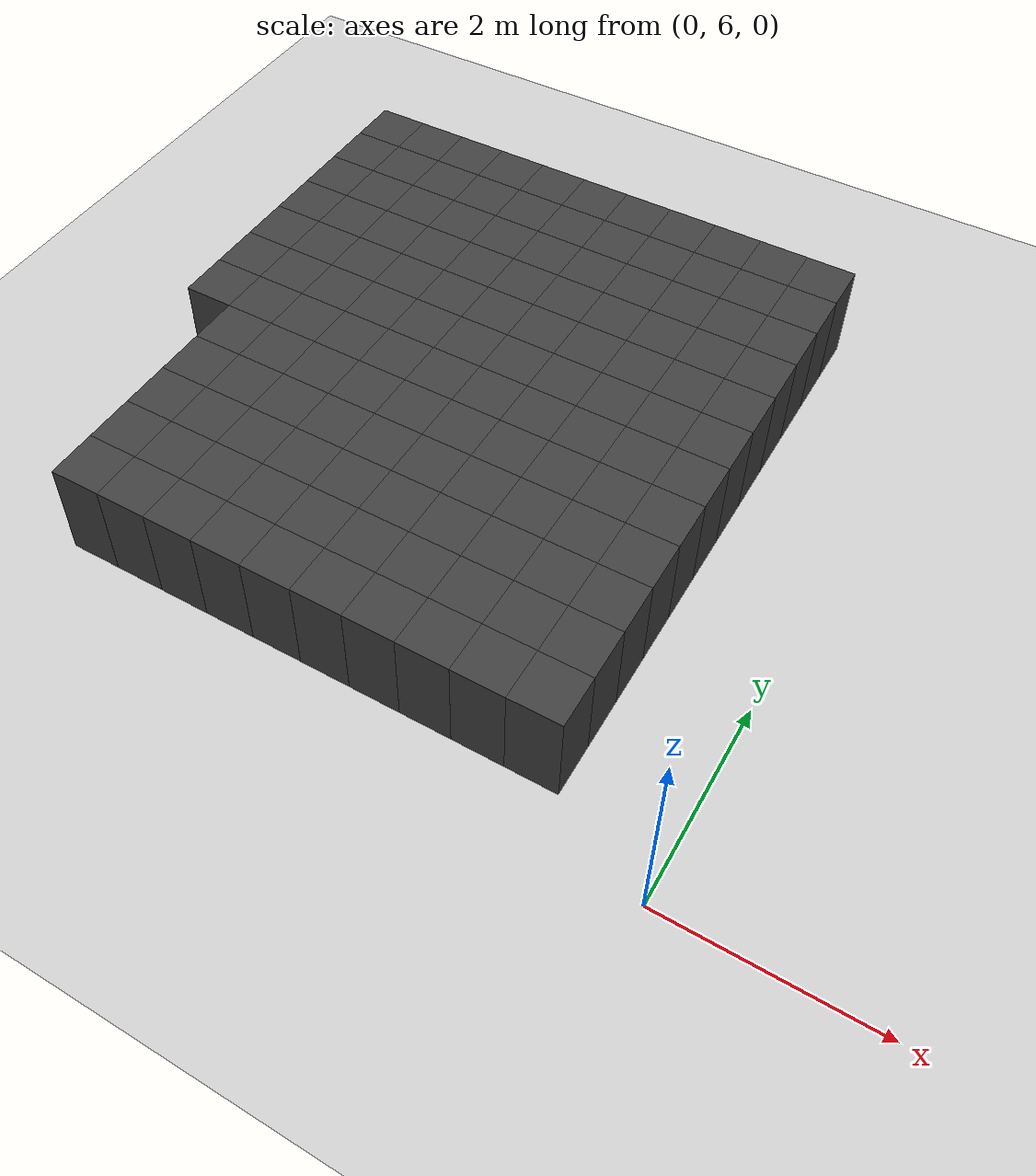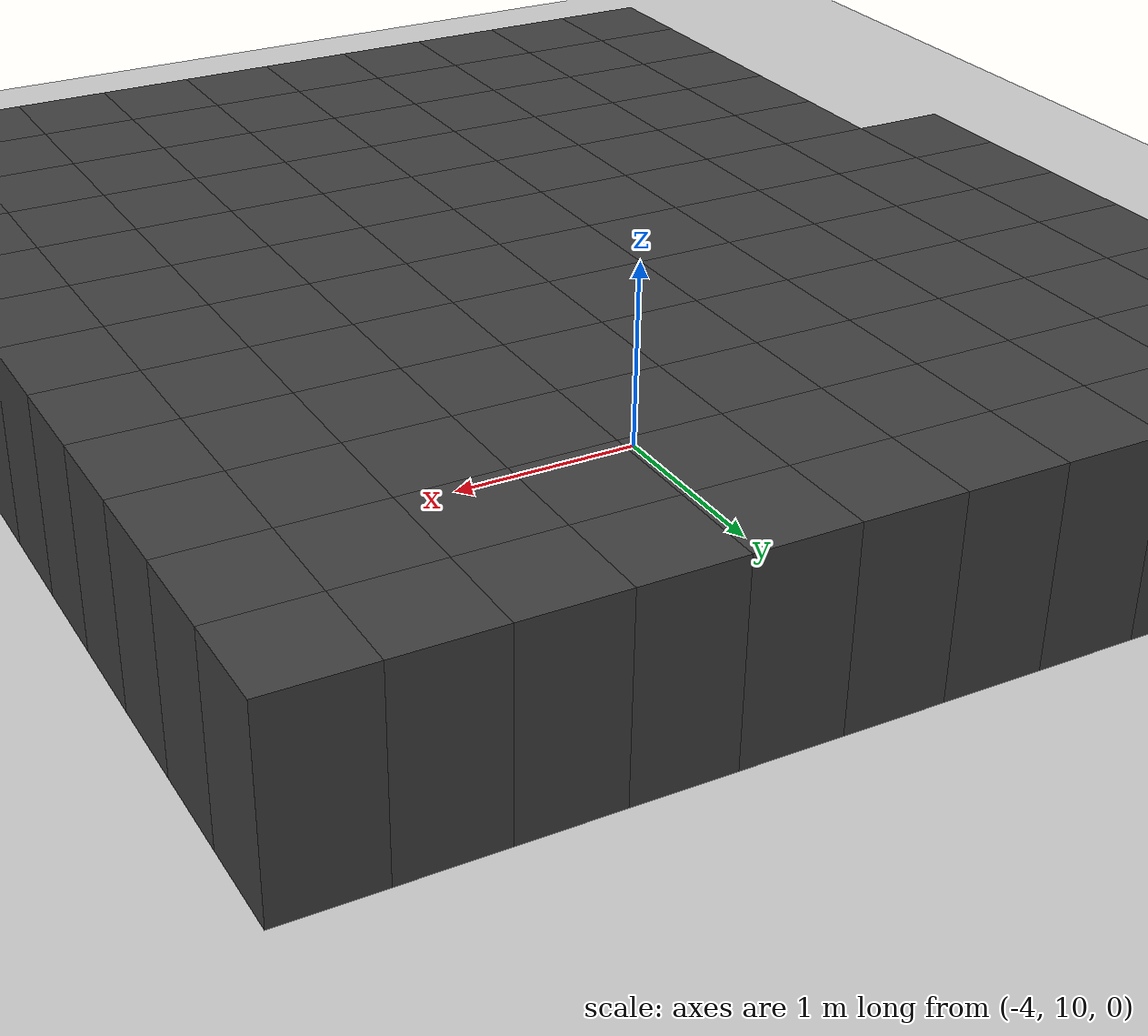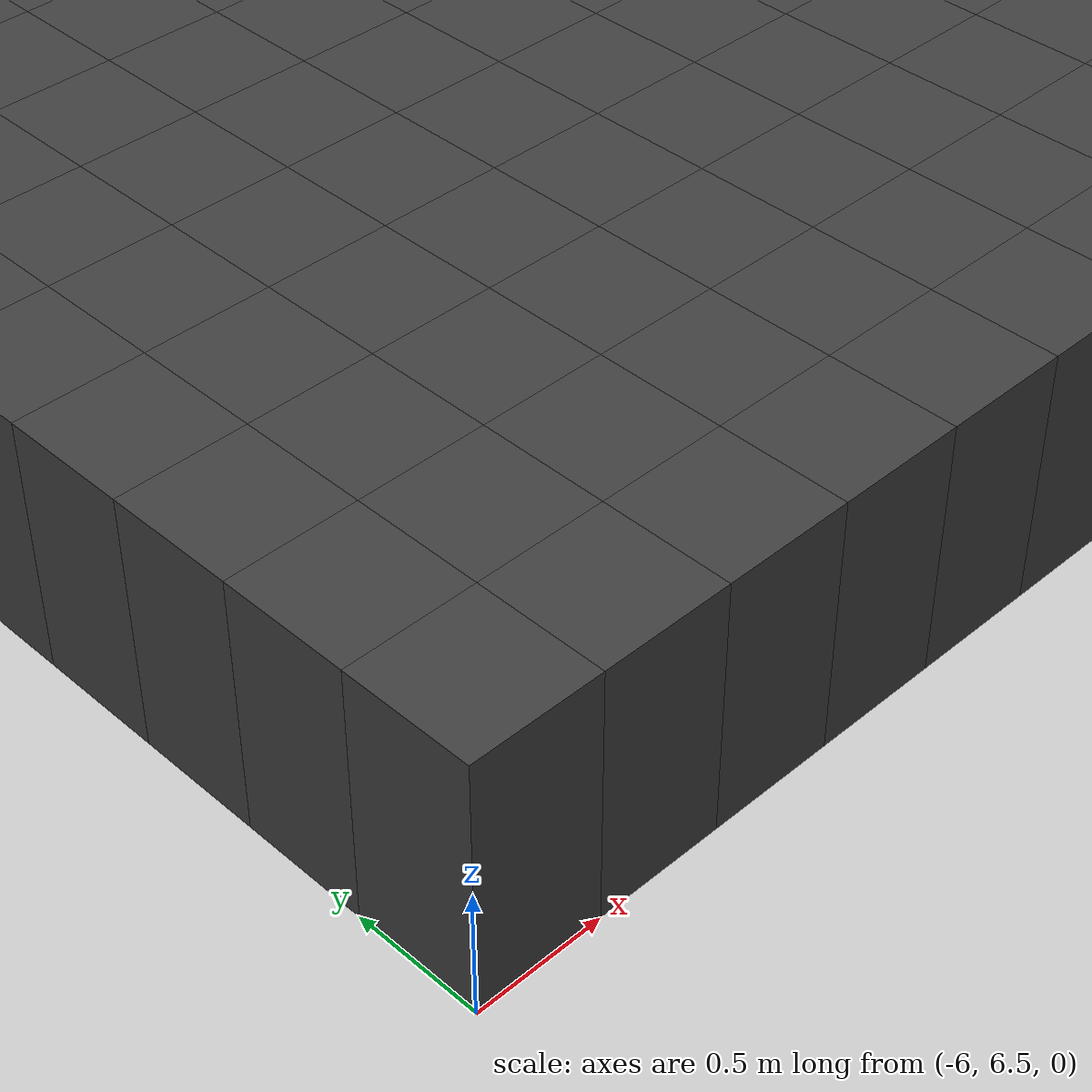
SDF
<sdf version="1.7">
 <world name="map_10777">
  <model name="ground_plane">
   <static>true</static>
   <link name="link">
    <collision name="collision">
     <geometry><plane><normal>0 0 1</normal><size>200 200</size></plane></geometry>
    </collision>
    <visual name="visual">
     <geometry><plane><normal>0 0 1</normal><size>200 200</size></plane></geometry>
     <material><ambient>0.8 0.8 0.8 1</ambient><diffuse>0.8 0.8 0.8 1</diffuse></material>
    </visual>
   </link>
  </model>
  <model name="maze_environment">
   <static>true</static>
   <link name="wall_12">
    <pose>-6.250 12.250 0.500 0 0 0</pose>
    <collision name="col"><geometry><box><size>0.5 0.5 1.0</size></box></geometry></collision>
    <visual name="vis">
     <geometry><box><size>0.5 0.5 1.0</size></box></geometry>
     <material><ambient>0.15 0.15 0.15 1</ambient><diffuse>0.25 0.25 0.25 1</diffuse></material>
    </visual>
   </link>
   <link name="wall_13">
    <pose>-5.750 12.250 0.500 0 0 0</pose>
    <collision name="col"><geometry><box><size>0.5 0.5 1.0</size></box></geometry></collision>
    <visual name="vis">
     <geometry><box><size>0.5 0.5 1.0</size></box></geometry>
     <material><ambient>0.15 0.15 0.15 1</ambient><diffuse>0.25 0.25 0.25 1</diffuse></material>
    </visual>
   </link>
   <link name="wall_14">
    <pose>-5.250 12.250 0.500 0 0 0</pose>
    <collision name="col"><geometry><box><size>0.5 0.5 1.0</size></box></geometry></collision>
    <visual name="vis">
     <geometry><box><size>0.5 0.5 1.0</size></box></geometry>
     <material><ambient>0.15 0.15 0.15 1</ambient><diffuse>0.25 0.25 0.25 1</diffuse></material>
    </visual>
   </link>
   <link name="wall_15">
    <pose>-4.750 12.250 0.500 0 0 0</pose>
    <collision name="col"><geometry><box><size>0.5 0.5 1.0</size></box></geometry></collision>
    <visual name="vis">
     <geometry><box><size>0.5 0.5 1.0</size></box></geometry>
     <material><ambient>0.15 0.15 0.15 1</ambient><diffuse>0.25 0.25 0.25 1</diffuse></material>
    </visual>
   </link>
   <link name="wall_16">
    <pose>-4.250 12.250 0.500 0 0 0</pose>
    <collision name="col"><geometry><box><size>0.5 0.5 1.0</size></box></geometry></collision>
    <visual name="vis">
     <geometry><box><size>0.5 0.5 1.0</size></box></geometry>
     <material><ambient>0.15 0.15 0.15 1</ambient><diffuse>0.25 0.25 0.25 1</diffuse></material>
    </visual>
   </link>
   <link name="wall_17">
    <pose>-3.750 12.250 0.500 0 0 0</pose>
    <collision name="col"><geometry><box><size>0.5 0.5 1.0</size></box></geometry></collision>
    <visual name="vis">
     <geometry><box><size>0.5 0.5 1.0</size></box></geometry>
     <material><ambient>0.15 0.15 0.15 1</ambient><diffuse>0.25 0.25 0.25 1</diffuse></material>
    </visual>
   </link>
   <link name="wall_18">
    <pose>-3.250 12.250 0.500 0 0 0</pose>
    <collision name="col"><geometry><box><size>0.5 0.5 1.0</size></box></geometry></collision>
    <visual name="vis">
     <geometry><box><size>0.5 0.5 1.0</size></box></geometry>
     <material><ambient>0.15 0.15 0.15 1</ambient><diffuse>0.25 0.25 0.25 1</diffuse></material>
    </visual>
   </link>
   <link name="wall_19">
    <pose>-2.750 12.250 0.500 0 0 0</pose>
    <collision name="col"><geometry><box><size>0.5 0.5 1.0</size></box></geometry></collision>
    <visual name="vis">
     <geometry><box><size>0.5 0.5 1.0</size></box></geometry>
     <material><ambient>0.15 0.15 0.15 1</ambient><diffuse>0.25 0.25 0.25 1</diffuse></material>
    </visual>
   </link>
   <link name="wall_20">
    <pose>-2.250 12.250 0.500 0 0 0</pose>
    <collision name="col"><geometry><box><size>0.5 0.5 1.0</size></box></geometry></collision>
    <visual name="vis">
     <geometry><box><size>0.5 0.5 1.0</size></box></geometry>
     <material><ambient>0.15 0.15 0.15 1</ambient><diffuse>0.25 0.25 0.25 1</diffuse></material>
    </visual>
   </link>
   <link name="wall_21">
    <pose>-1.750 12.250 0.500 0 0 0</pose>
    <collision name="col"><geometry><box><size>0.5 0.5 1.0</size></box></geometry></collision>
    <visual name="vis">
     <geometry><box><size>0.5 0.5 1.0</size></box></geometry>
     <material><ambient>0.15 0.15 0.15 1</ambient><diffuse>0.25 0.25 0.25 1</diffuse></material>
    </visual>
   </link>
   <link name="wall_22">
    <pose>-1.250 12.250 0.500 0 0 0</pose>
    <collision name="col"><geometry><box><size>0.5 0.5 1.0</size></box></geometry></collision>
    <visual name="vis">
     <geometry><box><size>0.5 0.5 1.0</size></box></geometry>
     <material><ambient>0.15 0.15 0.15 1</ambient><diffuse>0.25 0.25 0.25 1</diffuse></material>
    </visual>
   </link>
   <link name="wall_59">
    <pose>-6.250 11.750 0.500 0 0 0</pose>
    <collision name="col"><geometry><box><size>0.5 0.5 1.0</size></box></geometry></collision>
    <visual name="vis">
     <geometry><box><size>0.5 0.5 1.0</size></box></geometry>
     <material><ambient>0.15 0.15 0.15 1</ambient><diffuse>0.25 0.25 0.25 1</diffuse></material>
    </visual>
   </link>
   <link name="wall_60">
    <pose>-5.750 11.750 0.500 0 0 0</pose>
    <collision name="col"><geometry><box><size>0.5 0.5 1.0</size></box></geometry></collision>
    <visual name="vis">
     <geometry><box><size>0.5 0.5 1.0</size></box></geometry>
     <material><ambient>0.15 0.15 0.15 1</ambient><diffuse>0.25 0.25 0.25 1</diffuse></material>
    </visual>
   </link>
   <link name="wall_61">
    <pose>-5.250 11.750 0.500 0 0 0</pose>
    <collision name="col"><geometry><box><size>0.5 0.5 1.0</size></box></geometry></collision>
    <visual name="vis">
     <geometry><box><size>0.5 0.5 1.0</size></box></geometry>
     <material><ambient>0.15 0.15 0.15 1</ambient><diffuse>0.25 0.25 0.25 1</diffuse></material>
    </visual>
   </link>
   <link name="wall_62">
    <pose>-4.750 11.750 0.500 0 0 0</pose>
    <collision name="col"><geometry><box><size>0.5 0.5 1.0</size></box></geometry></collision>
    <visual name="vis">
     <geometry><box><size>0.5 0.5 1.0</size></box></geometry>
     <material><ambient>0.15 0.15 0.15 1</ambient><diffuse>0.25 0.25 0.25 1</diffuse></material>
    </visual>
   </link>
   <link name="wall_63">
    <pose>-4.250 11.750 0.500 0 0 0</pose>
    <collision name="col"><geometry><box><size>0.5 0.5 1.0</size></box></geometry></collision>
    <visual name="vis">
     <geometry><box><size>0.5 0.5 1.0</size></box></geometry>
     <material><ambient>0.15 0.15 0.15 1</ambient><diffuse>0.25 0.25 0.25 1</diffuse></material>
    </visual>
   </link>
   <link name="wall_64">
    <pose>-3.750 11.750 0.500 0 0 0</pose>
    <collision name="col"><geometry><box><size>0.5 0.5 1.0</size></box></geometry></collision>
    <visual name="vis">
     <geometry><box><size>0.5 0.5 1.0</size></box></geometry>
     <material><ambient>0.15 0.15 0.15 1</ambient><diffuse>0.25 0.25 0.25 1</diffuse></material>
    </visual>
   </link>
   <link name="wall_65">
    <pose>-3.250 11.750 0.500 0 0 0</pose>
    <collision name="col"><geometry><box><size>0.5 0.5 1.0</size></box></geometry></collision>
    <visual name="vis">
     <geometry><box><size>0.5 0.5 1.0</size></box></geometry>
     <material><ambient>0.15 0.15 0.15 1</ambient><diffuse>0.25 0.25 0.25 1</diffuse></material>
    </visual>
   </link>
   <link name="wall_66">
    <pose>-2.750 11.750 0.500 0 0 0</pose>
    <collision name="col"><geometry><box><size>0.5 0.5 1.0</size></box></geometry></collision>
    <visual name="vis">
     <geometry><box><size>0.5 0.5 1.0</size></box></geometry>
     <material><ambient>0.15 0.15 0.15 1</ambient><diffuse>0.25 0.25 0.25 1</diffuse></material>
    </visual>
   </link>
   <link name="wall_67">
    <pose>-2.250 11.750 0.500 0 0 0</pose>
    <collision name="col"><geometry><box><size>0.5 0.5 1.0</size></box></geometry></collision>
    <visual name="vis">
     <geometry><box><size>0.5 0.5 1.0</size></box></geometry>
     <material><ambient>0.15 0.15 0.15 1</ambient><diffuse>0.25 0.25 0.25 1</diffuse></material>
    </visual>
   </link>
   <link name="wall_68">
    <pose>-1.750 11.750 0.500 0 0 0</pose>
    <collision name="col"><geometry><box><size>0.5 0.5 1.0</size></box></geometry></collision>
    <visual name="vis">
     <geometry><box><size>0.5 0.5 1.0</size></box></geometry>
     <material><ambient>0.15 0.15 0.15 1</ambient><diffuse>0.25 0.25 0.25 1</diffuse></material>
    </visual>
   </link>
   <link name="wall_69">
    <pose>-1.250 11.750 0.500 0 0 0</pose>
    <collision name="col"><geometry><box><size>0.5 0.5 1.0</size></box></geometry></collision>
    <visual name="vis">
     <geometry><box><size>0.5 0.5 1.0</size></box></geometry>
     <material><ambient>0.15 0.15 0.15 1</ambient><diffuse>0.25 0.25 0.25 1</diffuse></material>
    </visual>
   </link>
   <link name="wall_106">
    <pose>-6.250 11.250 0.500 0 0 0</pose>
    <collision name="col"><geometry><box><size>0.5 0.5 1.0</size></box></geometry></collision>
    <visual name="vis">
     <geometry><box><size>0.5 0.5 1.0</size></box></geometry>
     <material><ambient>0.15 0.15 0.15 1</ambient><diffuse>0.25 0.25 0.25 1</diffuse></material>
    </visual>
   </link>
   <link name="wall_107">
    <pose>-5.750 11.250 0.500 0 0 0</pose>
    <collision name="col"><geometry><box><size>0.5 0.5 1.0</size></box></geometry></collision>
    <visual name="vis">
     <geometry><box><size>0.5 0.5 1.0</size></box></geometry>
     <material><ambient>0.15 0.15 0.15 1</ambient><diffuse>0.25 0.25 0.25 1</diffuse></material>
    </visual>
   </link>
   <link name="wall_108">
    <pose>-5.250 11.250 0.500 0 0 0</pose>
    <collision name="col"><geometry><box><size>0.5 0.5 1.0</size></box></geometry></collision>
    <visual name="vis">
     <geometry><box><size>0.5 0.5 1.0</size></box></geometry>
     <material><ambient>0.15 0.15 0.15 1</ambient><diffuse>0.25 0.25 0.25 1</diffuse></material>
    </visual>
   </link>
   <link name="wall_109">
    <pose>-4.750 11.250 0.500 0 0 0</pose>
    <collision name="col"><geometry><box><size>0.5 0.5 1.0</size></box></geometry></collision>
    <visual name="vis">
     <geometry><box><size>0.5 0.5 1.0</size></box></geometry>
     <material><ambient>0.15 0.15 0.15 1</ambient><diffuse>0.25 0.25 0.25 1</diffuse></material>
    </visual>
   </link>
   <link name="wall_110">
    <pose>-4.250 11.250 0.500 0 0 0</pose>
    <collision name="col"><geometry><box><size>0.5 0.5 1.0</size></box></geometry></collision>
    <visual name="vis">
     <geometry><box><size>0.5 0.5 1.0</size></box></geometry>
     <material><ambient>0.15 0.15 0.15 1</ambient><diffuse>0.25 0.25 0.25 1</diffuse></material>
    </visual>
   </link>
   <link name="wall_111">
    <pose>-3.750 11.250 0.500 0 0 0</pose>
    <collision name="col"><geometry><box><size>0.5 0.5 1.0</size></box></geometry></collision>
    <visual name="vis">
     <geometry><box><size>0.5 0.5 1.0</size></box></geometry>
     <material><ambient>0.15 0.15 0.15 1</ambient><diffuse>0.25 0.25 0.25 1</diffuse></material>
    </visual>
   </link>
   <link name="wall_112">
    <pose>-3.250 11.250 0.500 0 0 0</pose>
    <collision name="col"><geometry><box><size>0.5 0.5 1.0</size></box></geometry></collision>
    <visual name="vis">
     <geometry><box><size>0.5 0.5 1.0</size></box></geometry>
     <material><ambient>0.15 0.15 0.15 1</ambient><diffuse>0.25 0.25 0.25 1</diffuse></material>
    </visual>
   </link>
   <link name="wall_113">
    <pose>-2.750 11.250 0.500 0 0 0</pose>
    <collision name="col"><geometry><box><size>0.5 0.5 1.0</size></box></geometry></collision>
    <visual name="vis">
     <geometry><box><size>0.5 0.5 1.0</size></box></geometry>
     <material><ambient>0.15 0.15 0.15 1</ambient><diffuse>0.25 0.25 0.25 1</diffuse></material>
    </visual>
   </link>
   <link name="wall_114">
    <pose>-2.250 11.250 0.500 0 0 0</pose>
    <collision name="col"><geometry><box><size>0.5 0.5 1.0</size></box></geometry></collision>
    <visual name="vis">
     <geometry><box><size>0.5 0.5 1.0</size></box></geometry>
     <material><ambient>0.15 0.15 0.15 1</ambient><diffuse>0.25 0.25 0.25 1</diffuse></material>
    </visual>
   </link>
   <link name="wall_115">
    <pose>-1.750 11.250 0.500 0 0 0</pose>
    <collision name="col"><geometry><box><size>0.5 0.5 1.0</size></box></geometry></collision>
    <visual name="vis">
     <geometry><box><size>0.5 0.5 1.0</size></box></geometry>
     <material><ambient>0.15 0.15 0.15 1</ambient><diffuse>0.25 0.25 0.25 1</diffuse></material>
    </visual>
   </link>
   <link name="wall_116">
    <pose>-1.250 11.250 0.500 0 0 0</pose>
    <collision name="col"><geometry><box><size>0.5 0.5 1.0</size></box></geometry></collision>
    <visual name="vis">
     <geometry><box><size>0.5 0.5 1.0</size></box></geometry>
     <material><ambient>0.15 0.15 0.15 1</ambient><diffuse>0.25 0.25 0.25 1</diffuse></material>
    </visual>
   </link>
   <link name="wall_153">
    <pose>-6.250 10.750 0.500 0 0 0</pose>
    <collision name="col"><geometry><box><size>0.5 0.5 1.0</size></box></geometry></collision>
    <visual name="vis">
     <geometry><box><size>0.5 0.5 1.0</size></box></geometry>
     <material><ambient>0.15 0.15 0.15 1</ambient><diffuse>0.25 0.25 0.25 1</diffuse></material>
    </visual>
   </link>
   <link name="wall_154">
    <pose>-5.750 10.750 0.500 0 0 0</pose>
    <collision name="col"><geometry><box><size>0.5 0.5 1.0</size></box></geometry></collision>
    <visual name="vis">
     <geometry><box><size>0.5 0.5 1.0</size></box></geometry>
     <material><ambient>0.15 0.15 0.15 1</ambient><diffuse>0.25 0.25 0.25 1</diffuse></material>
    </visual>
   </link>
   <link name="wall_155">
    <pose>-5.250 10.750 0.500 0 0 0</pose>
    <collision name="col"><geometry><box><size>0.5 0.5 1.0</size></box></geometry></collision>
    <visual name="vis">
     <geometry><box><size>0.5 0.5 1.0</size></box></geometry>
     <material><ambient>0.15 0.15 0.15 1</ambient><diffuse>0.25 0.25 0.25 1</diffuse></material>
    </visual>
   </link>
   <link name="wall_156">
    <pose>-4.750 10.750 0.500 0 0 0</pose>
    <collision name="col"><geometry><box><size>0.5 0.5 1.0</size></box></geometry></collision>
    <visual name="vis">
     <geometry><box><size>0.5 0.5 1.0</size></box></geometry>
     <material><ambient>0.15 0.15 0.15 1</ambient><diffuse>0.25 0.25 0.25 1</diffuse></material>
    </visual>
   </link>
   <link name="wall_157">
    <pose>-4.250 10.750 0.500 0 0 0</pose>
    <collision name="col"><geometry><box><size>0.5 0.5 1.0</size></box></geometry></collision>
    <visual name="vis">
     <geometry><box><size>0.5 0.5 1.0</size></box></geometry>
     <material><ambient>0.15 0.15 0.15 1</ambient><diffuse>0.25 0.25 0.25 1</diffuse></material>
    </visual>
   </link>
   <link name="wall_158">
    <pose>-3.750 10.750 0.500 0 0 0</pose>
    <collision name="col"><geometry><box><size>0.5 0.5 1.0</size></box></geometry></collision>
    <visual name="vis">
     <geometry><box><size>0.5 0.5 1.0</size></box></geometry>
     <material><ambient>0.15 0.15 0.15 1</ambient><diffuse>0.25 0.25 0.25 1</diffuse></material>
    </visual>
   </link>
   <link name="wall_159">
    <pose>-3.250 10.750 0.500 0 0 0</pose>
    <collision name="col"><geometry><box><size>0.5 0.5 1.0</size></box></geometry></collision>
    <visual name="vis">
     <geometry><box><size>0.5 0.5 1.0</size></box></geometry>
     <material><ambient>0.15 0.15 0.15 1</ambient><diffuse>0.25 0.25 0.25 1</diffuse></material>
    </visual>
   </link>
   <link name="wall_160">
    <pose>-2.750 10.750 0.500 0 0 0</pose>
    <collision name="col"><geometry><box><size>0.5 0.5 1.0</size></box></geometry></collision>
    <visual name="vis">
     <geometry><box><size>0.5 0.5 1.0</size></box></geometry>
     <material><ambient>0.15 0.15 0.15 1</ambient><diffuse>0.25 0.25 0.25 1</diffuse></material>
    </visual>
   </link>
   <link name="wall_161">
    <pose>-2.250 10.750 0.500 0 0 0</pose>
    <collision name="col"><geometry><box><size>0.5 0.5 1.0</size></box></geometry></collision>
    <visual name="vis">
     <geometry><box><size>0.5 0.5 1.0</size></box></geometry>
     <material><ambient>0.15 0.15 0.15 1</ambient><diffuse>0.25 0.25 0.25 1</diffuse></material>
    </visual>
   </link>
   <link name="wall_162">
    <pose>-1.750 10.750 0.500 0 0 0</pose>
    <collision name="col"><geometry><box><size>0.5 0.5 1.0</size></box></geometry></collision>
    <visual name="vis">
     <geometry><box><size>0.5 0.5 1.0</size></box></geometry>
     <material><ambient>0.15 0.15 0.15 1</ambient><diffuse>0.25 0.25 0.25 1</diffuse></material>
    </visual>
   </link>
   <link name="wall_163">
    <pose>-1.250 10.750 0.500 0 0 0</pose>
    <collision name="col"><geometry><box><size>0.5 0.5 1.0</size></box></geometry></collision>
    <visual name="vis">
     <geometry><box><size>0.5 0.5 1.0</size></box></geometry>
     <material><ambient>0.15 0.15 0.15 1</ambient><diffuse>0.25 0.25 0.25 1</diffuse></material>
    </visual>
   </link>
   <link name="wall_202">
    <pose>-6.250 10.250 0.500 0 0 0</pose>
    <collision name="col"><geometry><box><size>0.5 0.5 1.0</size></box></geometry></collision>
    <visual name="vis">
     <geometry><box><size>0.5 0.5 1.0</size></box></geometry>
     <material><ambient>0.15 0.15 0.15 1</ambient><diffuse>0.25 0.25 0.25 1</diffuse></material>
    </visual>
   </link>
   <link name="wall_203">
    <pose>-5.750 10.250 0.500 0 0 0</pose>
    <collision name="col"><geometry><box><size>0.5 0.5 1.0</size></box></geometry></collision>
    <visual name="vis">
     <geometry><box><size>0.5 0.5 1.0</size></box></geometry>
     <material><ambient>0.15 0.15 0.15 1</ambient><diffuse>0.25 0.25 0.25 1</diffuse></material>
    </visual>
   </link>
   <link name="wall_204">
    <pose>-5.250 10.250 0.500 0 0 0</pose>
    <collision name="col"><geometry><box><size>0.5 0.5 1.0</size></box></geometry></collision>
    <visual name="vis">
     <geometry><box><size>0.5 0.5 1.0</size></box></geometry>
     <material><ambient>0.15 0.15 0.15 1</ambient><diffuse>0.25 0.25 0.25 1</diffuse></material>
    </visual>
   </link>
   <link name="wall_205">
    <pose>-4.750 10.250 0.500 0 0 0</pose>
    <collision name="col"><geometry><box><size>0.5 0.5 1.0</size></box></geometry></collision>
    <visual name="vis">
     <geometry><box><size>0.5 0.5 1.0</size></box></geometry>
     <material><ambient>0.15 0.15 0.15 1</ambient><diffuse>0.25 0.25 0.25 1</diffuse></material>
    </visual>
   </link>
   <link name="wall_206">
    <pose>-4.250 10.250 0.500 0 0 0</pose>
    <collision name="col"><geometry><box><size>0.5 0.5 1.0</size></box></geometry></collision>
    <visual name="vis">
     <geometry><box><size>0.5 0.5 1.0</size></box></geometry>
     <material><ambient>0.15 0.15 0.15 1</ambient><diffuse>0.25 0.25 0.25 1</diffuse></material>
    </visual>
   </link>
   <link name="wall_207">
    <pose>-3.750 10.250 0.500 0 0 0</pose>
    <collision name="col"><geometry><box><size>0.5 0.5 1.0</size></box></geometry></collision>
    <visual name="vis">
     <geometry><box><size>0.5 0.5 1.0</size></box></geometry>
     <material><ambient>0.15 0.15 0.15 1</ambient><diffuse>0.25 0.25 0.25 1</diffuse></material>
    </visual>
   </link>
   <link name="wall_208">
    <pose>-3.250 10.250 0.500 0 0 0</pose>
    <collision name="col"><geometry><box><size>0.5 0.5 1.0</size></box></geometry></collision>
    <visual name="vis">
     <geometry><box><size>0.5 0.5 1.0</size></box></geometry>
     <material><ambient>0.15 0.15 0.15 1</ambient><diffuse>0.25 0.25 0.25 1</diffuse></material>
    </visual>
   </link>
   <link name="wall_209">
    <pose>-2.750 10.250 0.500 0 0 0</pose>
    <collision name="col"><geometry><box><size>0.5 0.5 1.0</size></box></geometry></collision>
    <visual name="vis">
     <geometry><box><size>0.5 0.5 1.0</size></box></geometry>
     <material><ambient>0.15 0.15 0.15 1</ambient><diffuse>0.25 0.25 0.25 1</diffuse></material>
    </visual>
   </link>
   <link name="wall_210">
    <pose>-2.250 10.250 0.500 0 0 0</pose>
    <collision name="col"><geometry><box><size>0.5 0.5 1.0</size></box></geometry></collision>
    <visual name="vis">
     <geometry><box><size>0.5 0.5 1.0</size></box></geometry>
     <material><ambient>0.15 0.15 0.15 1</ambient><diffuse>0.25 0.25 0.25 1</diffuse></material>
    </visual>
   </link>
   <link name="wall_211">
    <pose>-1.750 10.250 0.500 0 0 0</pose>
    <collision name="col"><geometry><box><size>0.5 0.5 1.0</size></box></geometry></collision>
    <visual name="vis">
     <geometry><box><size>0.5 0.5 1.0</size></box></geometry>
     <material><ambient>0.15 0.15 0.15 1</ambient><diffuse>0.25 0.25 0.25 1</diffuse></material>
    </visual>
   </link>
   <link name="wall_212">
    <pose>-1.250 10.250 0.500 0 0 0</pose>
    <collision name="col"><geometry><box><size>0.5 0.5 1.0</size></box></geometry></collision>
    <visual name="vis">
     <geometry><box><size>0.5 0.5 1.0</size></box></geometry>
     <material><ambient>0.15 0.15 0.15 1</ambient><diffuse>0.25 0.25 0.25 1</diffuse></material>
    </visual>
   </link>
   <link name="wall_251">
    <pose>-6.250 9.750 0.500 0 0 0</pose>
    <collision name="col"><geometry><box><size>0.5 0.5 1.0</size></box></geometry></collision>
    <visual name="vis">
     <geometry><box><size>0.5 0.5 1.0</size></box></geometry>
     <material><ambient>0.15 0.15 0.15 1</ambient><diffuse>0.25 0.25 0.25 1</diffuse></material>
    </visual>
   </link>
   <link name="wall_252">
    <pose>-5.750 9.750 0.500 0 0 0</pose>
    <collision name="col"><geometry><box><size>0.5 0.5 1.0</size></box></geometry></collision>
    <visual name="vis">
     <geometry><box><size>0.5 0.5 1.0</size></box></geometry>
     <material><ambient>0.15 0.15 0.15 1</ambient><diffuse>0.25 0.25 0.25 1</diffuse></material>
    </visual>
   </link>
   <link name="wall_253">
    <pose>-5.250 9.750 0.500 0 0 0</pose>
    <collision name="col"><geometry><box><size>0.5 0.5 1.0</size></box></geometry></collision>
    <visual name="vis">
     <geometry><box><size>0.5 0.5 1.0</size></box></geometry>
     <material><ambient>0.15 0.15 0.15 1</ambient><diffuse>0.25 0.25 0.25 1</diffuse></material>
    </visual>
   </link>
   <link name="wall_254">
    <pose>-4.750 9.750 0.500 0 0 0</pose>
    <collision name="col"><geometry><box><size>0.5 0.5 1.0</size></box></geometry></collision>
    <visual name="vis">
     <geometry><box><size>0.5 0.5 1.0</size></box></geometry>
     <material><ambient>0.15 0.15 0.15 1</ambient><diffuse>0.25 0.25 0.25 1</diffuse></material>
    </visual>
   </link>
   <link name="wall_255">
    <pose>-4.250 9.750 0.500 0 0 0</pose>
    <collision name="col"><geometry><box><size>0.5 0.5 1.0</size></box></geometry></collision>
    <visual name="vis">
     <geometry><box><size>0.5 0.5 1.0</size></box></geometry>
     <material><ambient>0.15 0.15 0.15 1</ambient><diffuse>0.25 0.25 0.25 1</diffuse></material>
    </visual>
   </link>
   <link name="wall_256">
    <pose>-3.750 9.750 0.500 0 0 0</pose>
    <collision name="col"><geometry><box><size>0.5 0.5 1.0</size></box></geometry></collision>
    <visual name="vis">
     <geometry><box><size>0.5 0.5 1.0</size></box></geometry>
     <material><ambient>0.15 0.15 0.15 1</ambient><diffuse>0.25 0.25 0.25 1</diffuse></material>
    </visual>
   </link>
   <link name="wall_257">
    <pose>-3.250 9.750 0.500 0 0 0</pose>
    <collision name="col"><geometry><box><size>0.5 0.5 1.0</size></box></geometry></collision>
    <visual name="vis">
     <geometry><box><size>0.5 0.5 1.0</size></box></geometry>
     <material><ambient>0.15 0.15 0.15 1</ambient><diffuse>0.25 0.25 0.25 1</diffuse></material>
    </visual>
   </link>
   <link name="wall_258">
    <pose>-2.750 9.750 0.500 0 0 0</pose>
    <collision name="col"><geometry><box><size>0.5 0.5 1.0</size></box></geometry></collision>
    <visual name="vis">
     <geometry><box><size>0.5 0.5 1.0</size></box></geometry>
     <material><ambient>0.15 0.15 0.15 1</ambient><diffuse>0.25 0.25 0.25 1</diffuse></material>
    </visual>
   </link>
   <link name="wall_259">
    <pose>-2.250 9.750 0.500 0 0 0</pose>
    <collision name="col"><geometry><box><size>0.5 0.5 1.0</size></box></geometry></collision>
    <visual name="vis">
     <geometry><box><size>0.5 0.5 1.0</size></box></geometry>
     <material><ambient>0.15 0.15 0.15 1</ambient><diffuse>0.25 0.25 0.25 1</diffuse></material>
    </visual>
   </link>
   <link name="wall_260">
    <pose>-1.750 9.750 0.500 0 0 0</pose>
    <collision name="col"><geometry><box><size>0.5 0.5 1.0</size></box></geometry></collision>
    <visual name="vis">
     <geometry><box><size>0.5 0.5 1.0</size></box></geometry>
     <material><ambient>0.15 0.15 0.15 1</ambient><diffuse>0.25 0.25 0.25 1</diffuse></material>
    </visual>
   </link>
   <link name="wall_261">
    <pose>-1.250 9.750 0.500 0 0 0</pose>
    <collision name="col"><geometry><box><size>0.5 0.5 1.0</size></box></geometry></collision>
    <visual name="vis">
     <geometry><box><size>0.5 0.5 1.0</size></box></geometry>
     <material><ambient>0.15 0.15 0.15 1</ambient><diffuse>0.25 0.25 0.25 1</diffuse></material>
    </visual>
   </link>
   <link name="wall_300">
    <pose>-6.250 9.250 0.500 0 0 0</pose>
    <collision name="col"><geometry><box><size>0.5 0.5 1.0</size></box></geometry></collision>
    <visual name="vis">
     <geometry><box><size>0.5 0.5 1.0</size></box></geometry>
     <material><ambient>0.15 0.15 0.15 1</ambient><diffuse>0.25 0.25 0.25 1</diffuse></material>
    </visual>
   </link>
   <link name="wall_301">
    <pose>-5.750 9.250 0.500 0 0 0</pose>
    <collision name="col"><geometry><box><size>0.5 0.5 1.0</size></box></geometry></collision>
    <visual name="vis">
     <geometry><box><size>0.5 0.5 1.0</size></box></geometry>
     <material><ambient>0.15 0.15 0.15 1</ambient><diffuse>0.25 0.25 0.25 1</diffuse></material>
    </visual>
   </link>
   <link name="wall_302">
    <pose>-5.250 9.250 0.500 0 0 0</pose>
    <collision name="col"><geometry><box><size>0.5 0.5 1.0</size></box></geometry></collision>
    <visual name="vis">
     <geometry><box><size>0.5 0.5 1.0</size></box></geometry>
     <material><ambient>0.15 0.15 0.15 1</ambient><diffuse>0.25 0.25 0.25 1</diffuse></material>
    </visual>
   </link>
   <link name="wall_303">
    <pose>-4.750 9.250 0.500 0 0 0</pose>
    <collision name="col"><geometry><box><size>0.5 0.5 1.0</size></box></geometry></collision>
    <visual name="vis">
     <geometry><box><size>0.5 0.5 1.0</size></box></geometry>
     <material><ambient>0.15 0.15 0.15 1</ambient><diffuse>0.25 0.25 0.25 1</diffuse></material>
    </visual>
   </link>
   <link name="wall_304">
    <pose>-4.250 9.250 0.500 0 0 0</pose>
    <collision name="col"><geometry><box><size>0.5 0.5 1.0</size></box></geometry></collision>
    <visual name="vis">
     <geometry><box><size>0.5 0.5 1.0</size></box></geometry>
     <material><ambient>0.15 0.15 0.15 1</ambient><diffuse>0.25 0.25 0.25 1</diffuse></material>
    </visual>
   </link>
   <link name="wall_305">
    <pose>-3.750 9.250 0.500 0 0 0</pose>
    <collision name="col"><geometry><box><size>0.5 0.5 1.0</size></box></geometry></collision>
    <visual name="vis">
     <geometry><box><size>0.5 0.5 1.0</size></box></geometry>
     <material><ambient>0.15 0.15 0.15 1</ambient><diffuse>0.25 0.25 0.25 1</diffuse></material>
    </visual>
   </link>
   <link name="wall_306">
    <pose>-3.250 9.250 0.500 0 0 0</pose>
    <collision name="col"><geometry><box><size>0.5 0.5 1.0</size></box></geometry></collision>
    <visual name="vis">
     <geometry><box><size>0.5 0.5 1.0</size></box></geometry>
     <material><ambient>0.15 0.15 0.15 1</ambient><diffuse>0.25 0.25 0.25 1</diffuse></material>
    </visual>
   </link>
   <link name="wall_307">
    <pose>-2.750 9.250 0.500 0 0 0</pose>
    <collision name="col"><geometry><box><size>0.5 0.5 1.0</size></box></geometry></collision>
    <visual name="vis">
     <geometry><box><size>0.5 0.5 1.0</size></box></geometry>
     <material><ambient>0.15 0.15 0.15 1</ambient><diffuse>0.25 0.25 0.25 1</diffuse></material>
    </visual>
   </link>
   <link name="wall_308">
    <pose>-2.250 9.250 0.500 0 0 0</pose>
    <collision name="col"><geometry><box><size>0.5 0.5 1.0</size></box></geometry></collision>
    <visual name="vis">
     <geometry><box><size>0.5 0.5 1.0</size></box></geometry>
     <material><ambient>0.15 0.15 0.15 1</ambient><diffuse>0.25 0.25 0.25 1</diffuse></material>
    </visual>
   </link>
   <link name="wall_309">
    <pose>-1.750 9.250 0.500 0 0 0</pose>
    <collision name="col"><geometry><box><size>0.5 0.5 1.0</size></box></geometry></collision>
    <visual name="vis">
     <geometry><box><size>0.5 0.5 1.0</size></box></geometry>
     <material><ambient>0.15 0.15 0.15 1</ambient><diffuse>0.25 0.25 0.25 1</diffuse></material>
    </visual>
   </link>
   <link name="wall_310">
    <pose>-1.250 9.250 0.500 0 0 0</pose>
    <collision name="col"><geometry><box><size>0.5 0.5 1.0</size></box></geometry></collision>
    <visual name="vis">
     <geometry><box><size>0.5 0.5 1.0</size></box></geometry>
     <material><ambient>0.15 0.15 0.15 1</ambient><diffuse>0.25 0.25 0.25 1</diffuse></material>
    </visual>
   </link>
   <link name="wall_350">
    <pose>-5.750 8.750 0.500 0 0 0</pose>
    <collision name="col"><geometry><box><size>0.5 0.5 1.0</size></box></geometry></collision>
    <visual name="vis">
     <geometry><box><size>0.5 0.5 1.0</size></box></geometry>
     <material><ambient>0.15 0.15 0.15 1</ambient><diffuse>0.25 0.25 0.25 1</diffuse></material>
    </visual>
   </link>
   <link name="wall_351">
    <pose>-5.250 8.750 0.500 0 0 0</pose>
    <collision name="col"><geometry><box><size>0.5 0.5 1.0</size></box></geometry></collision>
    <visual name="vis">
     <geometry><box><size>0.5 0.5 1.0</size></box></geometry>
     <material><ambient>0.15 0.15 0.15 1</ambient><diffuse>0.25 0.25 0.25 1</diffuse></material>
    </visual>
   </link>
   <link name="wall_352">
    <pose>-4.750 8.750 0.500 0 0 0</pose>
    <collision name="col"><geometry><box><size>0.5 0.5 1.0</size></box></geometry></collision>
    <visual name="vis">
     <geometry><box><size>0.5 0.5 1.0</size></box></geometry>
     <material><ambient>0.15 0.15 0.15 1</ambient><diffuse>0.25 0.25 0.25 1</diffuse></material>
    </visual>
   </link>
   <link name="wall_353">
    <pose>-4.250 8.750 0.500 0 0 0</pose>
    <collision name="col"><geometry><box><size>0.5 0.5 1.0</size></box></geometry></collision>
    <visual name="vis">
     <geometry><box><size>0.5 0.5 1.0</size></box></geometry>
     <material><ambient>0.15 0.15 0.15 1</ambient><diffuse>0.25 0.25 0.25 1</diffuse></material>
    </visual>
   </link>
   <link name="wall_354">
    <pose>-3.750 8.750 0.500 0 0 0</pose>
    <collision name="col"><geometry><box><size>0.5 0.5 1.0</size></box></geometry></collision>
    <visual name="vis">
     <geometry><box><size>0.5 0.5 1.0</size></box></geometry>
     <material><ambient>0.15 0.15 0.15 1</ambient><diffuse>0.25 0.25 0.25 1</diffuse></material>
    </visual>
   </link>
   <link name="wall_355">
    <pose>-3.250 8.750 0.500 0 0 0</pose>
    <collision name="col"><geometry><box><size>0.5 0.5 1.0</size></box></geometry></collision>
    <visual name="vis">
     <geometry><box><size>0.5 0.5 1.0</size></box></geometry>
     <material><ambient>0.15 0.15 0.15 1</ambient><diffuse>0.25 0.25 0.25 1</diffuse></material>
    </visual>
   </link>
   <link name="wall_356">
    <pose>-2.750 8.750 0.500 0 0 0</pose>
    <collision name="col"><geometry><box><size>0.5 0.5 1.0</size></box></geometry></collision>
    <visual name="vis">
     <geometry><box><size>0.5 0.5 1.0</size></box></geometry>
     <material><ambient>0.15 0.15 0.15 1</ambient><diffuse>0.25 0.25 0.25 1</diffuse></material>
    </visual>
   </link>
   <link name="wall_357">
    <pose>-2.250 8.750 0.500 0 0 0</pose>
    <collision name="col"><geometry><box><size>0.5 0.5 1.0</size></box></geometry></collision>
    <visual name="vis">
     <geometry><box><size>0.5 0.5 1.0</size></box></geometry>
     <material><ambient>0.15 0.15 0.15 1</ambient><diffuse>0.25 0.25 0.25 1</diffuse></material>
    </visual>
   </link>
   <link name="wall_358">
    <pose>-1.750 8.750 0.500 0 0 0</pose>
    <collision name="col"><geometry><box><size>0.5 0.5 1.0</size></box></geometry></collision>
    <visual name="vis">
     <geometry><box><size>0.5 0.5 1.0</size></box></geometry>
     <material><ambient>0.15 0.15 0.15 1</ambient><diffuse>0.25 0.25 0.25 1</diffuse></material>
    </visual>
   </link>
   <link name="wall_359">
    <pose>-1.250 8.750 0.500 0 0 0</pose>
    <collision name="col"><geometry><box><size>0.5 0.5 1.0</size></box></geometry></collision>
    <visual name="vis">
     <geometry><box><size>0.5 0.5 1.0</size></box></geometry>
     <material><ambient>0.15 0.15 0.15 1</ambient><diffuse>0.25 0.25 0.25 1</diffuse></material>
    </visual>
   </link>
   <link name="wall_399">
    <pose>-5.750 8.250 0.500 0 0 0</pose>
    <collision name="col"><geometry><box><size>0.5 0.5 1.0</size></box></geometry></collision>
    <visual name="vis">
     <geometry><box><size>0.5 0.5 1.0</size></box></geometry>
     <material><ambient>0.15 0.15 0.15 1</ambient><diffuse>0.25 0.25 0.25 1</diffuse></material>
    </visual>
   </link>
   <link name="wall_400">
    <pose>-5.250 8.250 0.500 0 0 0</pose>
    <collision name="col"><geometry><box><size>0.5 0.5 1.0</size></box></geometry></collision>
    <visual name="vis">
     <geometry><box><size>0.5 0.5 1.0</size></box></geometry>
     <material><ambient>0.15 0.15 0.15 1</ambient><diffuse>0.25 0.25 0.25 1</diffuse></material>
    </visual>
   </link>
   <link name="wall_401">
    <pose>-4.750 8.250 0.500 0 0 0</pose>
    <collision name="col"><geometry><box><size>0.5 0.5 1.0</size></box></geometry></collision>
    <visual name="vis">
     <geometry><box><size>0.5 0.5 1.0</size></box></geometry>
     <material><ambient>0.15 0.15 0.15 1</ambient><diffuse>0.25 0.25 0.25 1</diffuse></material>
    </visual>
   </link>
   <link name="wall_402">
    <pose>-4.250 8.250 0.500 0 0 0</pose>
    <collision name="col"><geometry><box><size>0.5 0.5 1.0</size></box></geometry></collision>
    <visual name="vis">
     <geometry><box><size>0.5 0.5 1.0</size></box></geometry>
     <material><ambient>0.15 0.15 0.15 1</ambient><diffuse>0.25 0.25 0.25 1</diffuse></material>
    </visual>
   </link>
   <link name="wall_403">
    <pose>-3.750 8.250 0.500 0 0 0</pose>
    <collision name="col"><geometry><box><size>0.5 0.5 1.0</size></box></geometry></collision>
    <visual name="vis">
     <geometry><box><size>0.5 0.5 1.0</size></box></geometry>
     <material><ambient>0.15 0.15 0.15 1</ambient><diffuse>0.25 0.25 0.25 1</diffuse></material>
    </visual>
   </link>
   <link name="wall_404">
    <pose>-3.250 8.250 0.500 0 0 0</pose>
    <collision name="col"><geometry><box><size>0.5 0.5 1.0</size></box></geometry></collision>
    <visual name="vis">
     <geometry><box><size>0.5 0.5 1.0</size></box></geometry>
     <material><ambient>0.15 0.15 0.15 1</ambient><diffuse>0.25 0.25 0.25 1</diffuse></material>
    </visual>
   </link>
   <link name="wall_405">
    <pose>-2.750 8.250 0.500 0 0 0</pose>
    <collision name="col"><geometry><box><size>0.5 0.5 1.0</size></box></geometry></collision>
    <visual name="vis">
     <geometry><box><size>0.5 0.5 1.0</size></box></geometry>
     <material><ambient>0.15 0.15 0.15 1</ambient><diffuse>0.25 0.25 0.25 1</diffuse></material>
    </visual>
   </link>
   <link name="wall_406">
    <pose>-2.250 8.250 0.500 0 0 0</pose>
    <collision name="col"><geometry><box><size>0.5 0.5 1.0</size></box></geometry></collision>
    <visual name="vis">
     <geometry><box><size>0.5 0.5 1.0</size></box></geometry>
     <material><ambient>0.15 0.15 0.15 1</ambient><diffuse>0.25 0.25 0.25 1</diffuse></material>
    </visual>
   </link>
   <link name="wall_407">
    <pose>-1.750 8.250 0.500 0 0 0</pose>
    <collision name="col"><geometry><box><size>0.5 0.5 1.0</size></box></geometry></collision>
    <visual name="vis">
     <geometry><box><size>0.5 0.5 1.0</size></box></geometry>
     <material><ambient>0.15 0.15 0.15 1</ambient><diffuse>0.25 0.25 0.25 1</diffuse></material>
    </visual>
   </link>
   <link name="wall_408">
    <pose>-1.250 8.250 0.500 0 0 0</pose>
    <collision name="col"><geometry><box><size>0.5 0.5 1.0</size></box></geometry></collision>
    <visual name="vis">
     <geometry><box><size>0.5 0.5 1.0</size></box></geometry>
     <material><ambient>0.15 0.15 0.15 1</ambient><diffuse>0.25 0.25 0.25 1</diffuse></material>
    </visual>
   </link>
   <link name="wall_448">
    <pose>-5.750 7.750 0.500 0 0 0</pose>
    <collision name="col"><geometry><box><size>0.5 0.5 1.0</size></box></geometry></collision>
    <visual name="vis">
     <geometry><box><size>0.5 0.5 1.0</size></box></geometry>
     <material><ambient>0.15 0.15 0.15 1</ambient><diffuse>0.25 0.25 0.25 1</diffuse></material>
    </visual>
   </link>
   <link name="wall_449">
    <pose>-5.250 7.750 0.500 0 0 0</pose>
    <collision name="col"><geometry><box><size>0.5 0.5 1.0</size></box></geometry></collision>
    <visual name="vis">
     <geometry><box><size>0.5 0.5 1.0</size></box></geometry>
     <material><ambient>0.15 0.15 0.15 1</ambient><diffuse>0.25 0.25 0.25 1</diffuse></material>
    </visual>
   </link>
   <link name="wall_450">
    <pose>-4.750 7.750 0.500 0 0 0</pose>
    <collision name="col"><geometry><box><size>0.5 0.5 1.0</size></box></geometry></collision>
    <visual name="vis">
     <geometry><box><size>0.5 0.5 1.0</size></box></geometry>
     <material><ambient>0.15 0.15 0.15 1</ambient><diffuse>0.25 0.25 0.25 1</diffuse></material>
    </visual>
   </link>
   <link name="wall_451">
    <pose>-4.250 7.750 0.500 0 0 0</pose>
    <collision name="col"><geometry><box><size>0.5 0.5 1.0</size></box></geometry></collision>
    <visual name="vis">
     <geometry><box><size>0.5 0.5 1.0</size></box></geometry>
     <material><ambient>0.15 0.15 0.15 1</ambient><diffuse>0.25 0.25 0.25 1</diffuse></material>
    </visual>
   </link>
   <link name="wall_452">
    <pose>-3.750 7.750 0.500 0 0 0</pose>
    <collision name="col"><geometry><box><size>0.5 0.5 1.0</size></box></geometry></collision>
    <visual name="vis">
     <geometry><box><size>0.5 0.5 1.0</size></box></geometry>
     <material><ambient>0.15 0.15 0.15 1</ambient><diffuse>0.25 0.25 0.25 1</diffuse></material>
    </visual>
   </link>
   <link name="wall_453">
    <pose>-3.250 7.750 0.500 0 0 0</pose>
    <collision name="col"><geometry><box><size>0.5 0.5 1.0</size></box></geometry></collision>
    <visual name="vis">
     <geometry><box><size>0.5 0.5 1.0</size></box></geometry>
     <material><ambient>0.15 0.15 0.15 1</ambient><diffuse>0.25 0.25 0.25 1</diffuse></material>
    </visual>
   </link>
   <link name="wall_454">
    <pose>-2.750 7.750 0.500 0 0 0</pose>
    <collision name="col"><geometry><box><size>0.5 0.5 1.0</size></box></geometry></collision>
    <visual name="vis">
     <geometry><box><size>0.5 0.5 1.0</size></box></geometry>
     <material><ambient>0.15 0.15 0.15 1</ambient><diffuse>0.25 0.25 0.25 1</diffuse></material>
    </visual>
   </link>
   <link name="wall_455">
    <pose>-2.250 7.750 0.500 0 0 0</pose>
    <collision name="col"><geometry><box><size>0.5 0.5 1.0</size></box></geometry></collision>
    <visual name="vis">
     <geometry><box><size>0.5 0.5 1.0</size></box></geometry>
     <material><ambient>0.15 0.15 0.15 1</ambient><diffuse>0.25 0.25 0.25 1</diffuse></material>
    </visual>
   </link>
   <link name="wall_456">
    <pose>-1.750 7.750 0.500 0 0 0</pose>
    <collision name="col"><geometry><box><size>0.5 0.5 1.0</size></box></geometry></collision>
    <visual name="vis">
     <geometry><box><size>0.5 0.5 1.0</size></box></geometry>
     <material><ambient>0.15 0.15 0.15 1</ambient><diffuse>0.25 0.25 0.25 1</diffuse></material>
    </visual>
   </link>
   <link name="wall_457">
    <pose>-1.250 7.750 0.500 0 0 0</pose>
    <collision name="col"><geometry><box><size>0.5 0.5 1.0</size></box></geometry></collision>
    <visual name="vis">
     <geometry><box><size>0.5 0.5 1.0</size></box></geometry>
     <material><ambient>0.15 0.15 0.15 1</ambient><diffuse>0.25 0.25 0.25 1</diffuse></material>
    </visual>
   </link>
   <link name="wall_497">
    <pose>-5.750 7.250 0.500 0 0 0</pose>
    <collision name="col"><geometry><box><size>0.5 0.5 1.0</size></box></geometry></collision>
    <visual name="vis">
     <geometry><box><size>0.5 0.5 1.0</size></box></geometry>
     <material><ambient>0.15 0.15 0.15 1</ambient><diffuse>0.25 0.25 0.25 1</diffuse></material>
    </visual>
   </link>
   <link name="wall_498">
    <pose>-5.250 7.250 0.500 0 0 0</pose>
    <collision name="col"><geometry><box><size>0.5 0.5 1.0</size></box></geometry></collision>
    <visual name="vis">
     <geometry><box><size>0.5 0.5 1.0</size></box></geometry>
     <material><ambient>0.15 0.15 0.15 1</ambient><diffuse>0.25 0.25 0.25 1</diffuse></material>
    </visual>
   </link>
   <link name="wall_499">
    <pose>-4.750 7.250 0.500 0 0 0</pose>
    <collision name="col"><geometry><box><size>0.5 0.5 1.0</size></box></geometry></collision>
    <visual name="vis">
     <geometry><box><size>0.5 0.5 1.0</size></box></geometry>
     <material><ambient>0.15 0.15 0.15 1</ambient><diffuse>0.25 0.25 0.25 1</diffuse></material>
    </visual>
   </link>
   <link name="wall_500">
    <pose>-4.250 7.250 0.500 0 0 0</pose>
    <collision name="col"><geometry><box><size>0.5 0.5 1.0</size></box></geometry></collision>
    <visual name="vis">
     <geometry><box><size>0.5 0.5 1.0</size></box></geometry>
     <material><ambient>0.15 0.15 0.15 1</ambient><diffuse>0.25 0.25 0.25 1</diffuse></material>
    </visual>
   </link>
   <link name="wall_501">
    <pose>-3.750 7.250 0.500 0 0 0</pose>
    <collision name="col"><geometry><box><size>0.5 0.5 1.0</size></box></geometry></collision>
    <visual name="vis">
     <geometry><box><size>0.5 0.5 1.0</size></box></geometry>
     <material><ambient>0.15 0.15 0.15 1</ambient><diffuse>0.25 0.25 0.25 1</diffuse></material>
    </visual>
   </link>
   <link name="wall_502">
    <pose>-3.250 7.250 0.500 0 0 0</pose>
    <collision name="col"><geometry><box><size>0.5 0.5 1.0</size></box></geometry></collision>
    <visual name="vis">
     <geometry><box><size>0.5 0.5 1.0</size></box></geometry>
     <material><ambient>0.15 0.15 0.15 1</ambient><diffuse>0.25 0.25 0.25 1</diffuse></material>
    </visual>
   </link>
   <link name="wall_503">
    <pose>-2.750 7.250 0.500 0 0 0</pose>
    <collision name="col"><geometry><box><size>0.5 0.5 1.0</size></box></geometry></collision>
    <visual name="vis">
     <geometry><box><size>0.5 0.5 1.0</size></box></geometry>
     <material><ambient>0.15 0.15 0.15 1</ambient><diffuse>0.25 0.25 0.25 1</diffuse></material>
    </visual>
   </link>
   <link name="wall_504">
    <pose>-2.250 7.250 0.500 0 0 0</pose>
    <collision name="col"><geometry><box><size>0.5 0.5 1.0</size></box></geometry></collision>
    <visual name="vis">
     <geometry><box><size>0.5 0.5 1.0</size></box></geometry>
     <material><ambient>0.15 0.15 0.15 1</ambient><diffuse>0.25 0.25 0.25 1</diffuse></material>
    </visual>
   </link>
   <link name="wall_505">
    <pose>-1.750 7.250 0.500 0 0 0</pose>
    <collision name="col"><geometry><box><size>0.5 0.5 1.0</size></box></geometry></collision>
    <visual name="vis">
     <geometry><box><size>0.5 0.5 1.0</size></box></geometry>
     <material><ambient>0.15 0.15 0.15 1</ambient><diffuse>0.25 0.25 0.25 1</diffuse></material>
    </visual>
   </link>
   <link name="wall_506">
    <pose>-1.250 7.250 0.500 0 0 0</pose>
    <collision name="col"><geometry><box><size>0.5 0.5 1.0</size></box></geometry></collision>
    <visual name="vis">
     <geometry><box><size>0.5 0.5 1.0</size></box></geometry>
     <material><ambient>0.15 0.15 0.15 1</ambient><diffuse>0.25 0.25 0.25 1</diffuse></material>
    </visual>
   </link>
   <link name="wall_540">
    <pose>-5.750 6.750 0.500 0 0 0</pose>
    <collision name="col"><geometry><box><size>0.5 0.5 1.0</size></box></geometry></collision>
    <visual name="vis">
     <geometry><box><size>0.5 0.5 1.0</size></box></geometry>
     <material><ambient>0.15 0.15 0.15 1</ambient><diffuse>0.25 0.25 0.25 1</diffuse></material>
    </visual>
   </link>
   <link name="wall_541">
    <pose>-5.250 6.750 0.500 0 0 0</pose>
    <collision name="col"><geometry><box><size>0.5 0.5 1.0</size></box></geometry></collision>
    <visual name="vis">
     <geometry><box><size>0.5 0.5 1.0</size></box></geometry>
     <material><ambient>0.15 0.15 0.15 1</ambient><diffuse>0.25 0.25 0.25 1</diffuse></material>
    </visual>
   </link>
   <link name="wall_542">
    <pose>-4.750 6.750 0.500 0 0 0</pose>
    <collision name="col"><geometry><box><size>0.5 0.5 1.0</size></box></geometry></collision>
    <visual name="vis">
     <geometry><box><size>0.5 0.5 1.0</size></box></geometry>
     <material><ambient>0.15 0.15 0.15 1</ambient><diffuse>0.25 0.25 0.25 1</diffuse></material>
    </visual>
   </link>
   <link name="wall_543">
    <pose>-4.250 6.750 0.500 0 0 0</pose>
    <collision name="col"><geometry><box><size>0.5 0.5 1.0</size></box></geometry></collision>
    <visual name="vis">
     <geometry><box><size>0.5 0.5 1.0</size></box></geometry>
     <material><ambient>0.15 0.15 0.15 1</ambient><diffuse>0.25 0.25 0.25 1</diffuse></material>
    </visual>
   </link>
   <link name="wall_544">
    <pose>-3.750 6.750 0.500 0 0 0</pose>
    <collision name="col"><geometry><box><size>0.5 0.5 1.0</size></box></geometry></collision>
    <visual name="vis">
     <geometry><box><size>0.5 0.5 1.0</size></box></geometry>
     <material><ambient>0.15 0.15 0.15 1</ambient><diffuse>0.25 0.25 0.25 1</diffuse></material>
    </visual>
   </link>
   <link name="wall_545">
    <pose>-3.250 6.750 0.500 0 0 0</pose>
    <collision name="col"><geometry><box><size>0.5 0.5 1.0</size></box></geometry></collision>
    <visual name="vis">
     <geometry><box><size>0.5 0.5 1.0</size></box></geometry>
     <material><ambient>0.15 0.15 0.15 1</ambient><diffuse>0.25 0.25 0.25 1</diffuse></material>
    </visual>
   </link>
   <link name="wall_546">
    <pose>-2.750 6.750 0.500 0 0 0</pose>
    <collision name="col"><geometry><box><size>0.5 0.5 1.0</size></box></geometry></collision>
    <visual name="vis">
     <geometry><box><size>0.5 0.5 1.0</size></box></geometry>
     <material><ambient>0.15 0.15 0.15 1</ambient><diffuse>0.25 0.25 0.25 1</diffuse></material>
    </visual>
   </link>
   <link name="wall_547">
    <pose>-2.250 6.750 0.500 0 0 0</pose>
    <collision name="col"><geometry><box><size>0.5 0.5 1.0</size></box></geometry></collision>
    <visual name="vis">
     <geometry><box><size>0.5 0.5 1.0</size></box></geometry>
     <material><ambient>0.15 0.15 0.15 1</ambient><diffuse>0.25 0.25 0.25 1</diffuse></material>
    </visual>
   </link>
   <link name="wall_548">
    <pose>-1.750 6.750 0.500 0 0 0</pose>
    <collision name="col"><geometry><box><size>0.5 0.5 1.0</size></box></geometry></collision>
    <visual name="vis">
     <geometry><box><size>0.5 0.5 1.0</size></box></geometry>
     <material><ambient>0.15 0.15 0.15 1</ambient><diffuse>0.25 0.25 0.25 1</diffuse></material>
    </visual>
   </link>
   <link name="wall_549">
    <pose>-1.250 6.750 0.500 0 0 0</pose>
    <collision name="col"><geometry><box><size>0.5 0.5 1.0</size></box></geometry></collision>
    <visual name="vis">
     <geometry><box><size>0.5 0.5 1.0</size></box></geometry>
     <material><ambient>0.15 0.15 0.15 1</ambient><diffuse>0.25 0.25 0.25 1</diffuse></material>
    </visual>
   </link>
  </model>
 </world>
</sdf>
